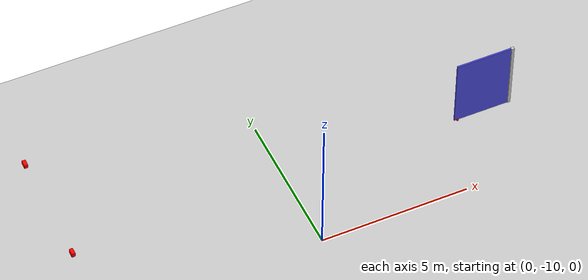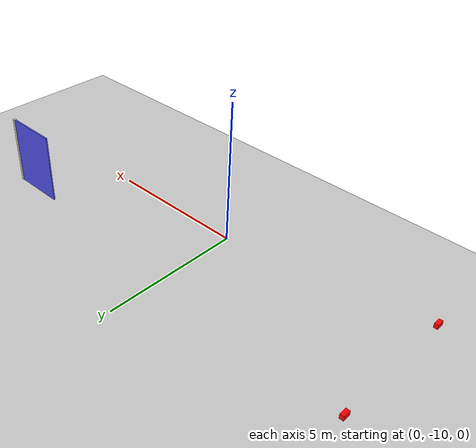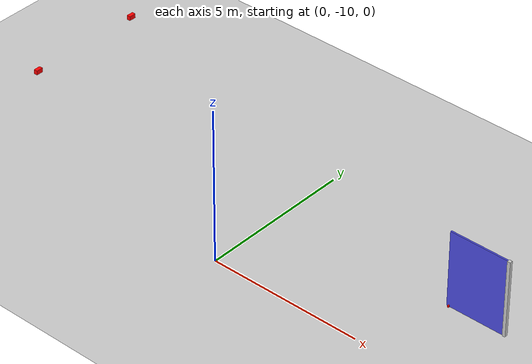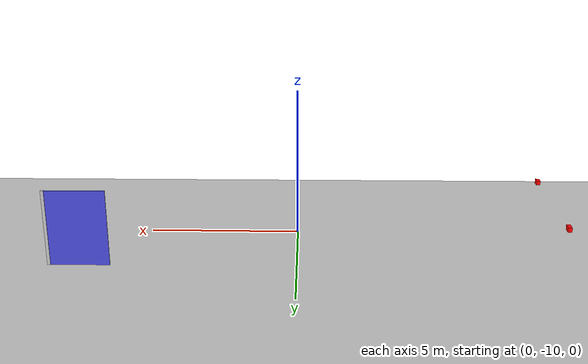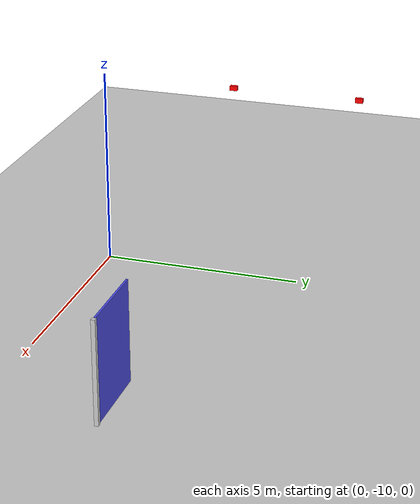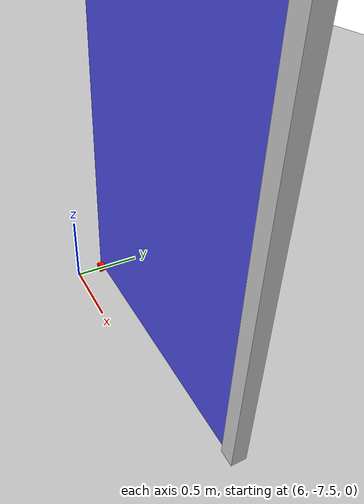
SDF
<sdf version="1.7">
 <world name="default">
  <model name="ground_plane">
   <static>1</static>
   <link name="link">
    <collision name="collision">
     <geometry><plane><normal>0 0 1</normal><size>100 100</size></plane></geometry>
     <surface><friction><ode><mu>100</mu><mu2>50</mu2></ode></friction></surface>
    </collision>
    <visual name="visual">
     <cast_shadows>0</cast_shadows>
     <geometry><plane><normal>0 0 1</normal><size>100 100</size></plane></geometry>
     <material>
      <script><uri>file://media/materials/scripts/gazebo.material</uri><name>Gazebo/Grey</name></script>
     </material>
    </visual>
   </link>
  </model>
  <model name="door_1">
   <link name="door_frame">
    <pose>0.705849 0 1.25 0 -0 0</pose>
    <kinematic>1</kinematic>
    <inertial>
     <inertia><ixx>1</ixx><ixy>0</ixy><ixz>0</ixz><iyy>1</iyy><iyz>0</iyz><izz>1</izz></inertia>
     <mass>1</mass>
    </inertial>
    <visual name="frame_visual">
     <geometry><box><size>0.1 0.1 2.5</size></box></geometry>
     <material>
      <ambient>0.7 0.7 0.7 1</ambient>
      <diffuse>0.8 0.8 0.8 1</diffuse>
      <shader type="pixel"><normal_map>__default__</normal_map></shader>
      <script><name>ModelPreview_2::door_frame::frame_visual_MATERIAL_</name><uri>__default__</uri></script>
      <specular>0 0 0 1</specular>
      <emissive>0 0 0 1</emissive>
     </material>
    </visual>
    <collision name="frame_collision">
     <geometry><box><size>0.1 0.1 2.5</size></box></geometry>
     <surface>
      <friction>
       <ode><mu>1</mu><mu2>1</mu2><fdir1>0 0 0</fdir1><slip1>0</slip1><slip2>0</slip2></ode>
       <torsional>
        <coefficient>1</coefficient>
        <patch_radius>0</patch_radius>
        <surface_radius>0</surface_radius>
        <use_patch_radius>1</use_patch_radius>
        <ode><slip>0</slip></ode>
       </torsional>
      </friction>
      <bounce><restitution_coefficient>0</restitution_coefficient><threshold>1e+06</threshold></bounce>
      <contact>
       <collide_without_contact>0</collide_without_contact>
       <collide_without_contact_bitmask>1</collide_without_contact_bitmask>
       <collide_bitmask>1</collide_bitmask>
       <ode>
        <soft_cfm>0</soft_cfm>
        <soft_erp>0.2</soft_erp>
        <kp>1e+13</kp>
        <kd>1</kd>
        <max_vel>0.01</max_vel>
        <min_depth>0</min_depth>
       </ode>
       <bullet>
        <split_impulse>1</split_impulse>
        <split_impulse_penetration_threshold>-0.01</split_impulse_penetration_threshold>
        <soft_cfm>0</soft_cfm>
        <soft_erp>0.2</soft_erp>
        <kp>1e+13</kp>
        <kd>1</kd>
       </bullet>
      </contact>
     </surface>
    </collision>
   </link>
   <link name="door">
    <kinematic>1</kinematic>
    <pose>-0.288809 0 1.25 0 -0 0</pose>
    <inertial>
     <inertia><ixx>1.96777</ixx><ixy>0</ixy><ixz>0</ixz><iyy>3.08912</iyy><iyz>0</iyz><izz>1.12292</izz></inertia>
     <mass>3.77661</mass>
    </inertial>
    <visual name="door_visual">
     <geometry><box><size>1.88826 0.05 2.5</size></box></geometry>
     <material>
      <ambient>0.2 0.2 0.8 1</ambient>
      <diffuse>0.3 0.3 0.9 1</diffuse>
      <shader type="pixel"/>
      <script><name>ModelPreview_2::door::door_visual_MATERIAL_</name><uri>__default__</uri></script>
     </material>
    </visual>
    <collision name="door_collision">
     <geometry><box><size>1.88826 0.05 2.5</size></box></geometry>
     <surface>
      <friction>
       <ode><mu>1</mu><mu2>1</mu2><fdir1>0 0 0</fdir1><slip1>0</slip1><slip2>0</slip2></ode>
       <torsional>
        <coefficient>1</coefficient>
        <patch_radius>0</patch_radius>
        <surface_radius>0</surface_radius>
        <use_patch_radius>1</use_patch_radius>
        <ode><slip>0</slip></ode>
       </torsional>
      </friction>
      <bounce><restitution_coefficient>0</restitution_coefficient><threshold>1e+06</threshold></bounce>
      <contact>
       <collide_without_contact>0</collide_without_contact>
       <collide_without_contact_bitmask>1</collide_without_contact_bitmask>
       <collide_bitmask>1</collide_bitmask>
       <ode>
        <soft_cfm>0</soft_cfm>
        <soft_erp>0.2</soft_erp>
        <kp>1e+13</kp>
        <kd>1</kd>
        <max_vel>0.01</max_vel>
        <min_depth>0</min_depth>
       </ode>
       <bullet>
        <split_impulse>1</split_impulse>
        <split_impulse_penetration_threshold>-0.01</split_impulse_penetration_threshold>
        <soft_cfm>0</soft_cfm>
        <soft_erp>0.2</soft_erp>
        <kp>1e+13</kp>
        <kd>1</kd>
       </bullet>
      </contact>
     </surface>
    </collision>
   </link>
   <joint name="door_joint" type="prismatic">
    <parent>door_frame</parent>
    <child>door</child>
    <axis>
     <xyz>1 0 0</xyz>
     <limit><lower>0</lower><upper>2</upper><effort>-1</effort><velocity>-1</velocity></limit>
     <dynamics>
      <spring_reference>0</spring_reference>
      <spring_stiffness>0</spring_stiffness>
      <damping>0</damping>
      <friction>0</friction>
     </dynamics>
    </axis>
    <physics>
     <ode><limit><cfm>0</cfm><erp>0.2</erp></limit><suspension><cfm>0</cfm><erp>0.2</erp></suspension></ode>
    </physics>
   </joint>
   <static>0</static>
   <plugin name="door_control_plugin" filename="libdoor_control_plugin.so">
    <door_joint>door_joint</door_joint>
    <speed>1.0</speed>
    <open_target>1.0</open_target>
    <close_target>0.0</close_target>
   </plugin>
   <pose>7.159 -7.25541 0 0 -0 0</pose>
  </model>
  <model name="Lidar_1">
   <link name="link_1">
    <inertial>
     <mass>0.00014111</mass>
     <inertia><ixx>7e-08</ixx><ixy>0</ixy><ixz>0</ixz><iyy>7e-08</iyy><iyz>0</iyz><izz>6e-08</izz></inertia>
    </inertial>
    <visual name="visual">
     <geometry><box><size>0.048286 0.048861 0.059852</size></box></geometry>
     <material>
      <lighting>1</lighting>
      <script><uri>file://media/materials/scripts/gazebo.material</uri><name>Gazebo/Grey</name></script>
      <shader type="pixel"><normal_map>__default__</normal_map></shader>
      <ambient>1 0 0 1</ambient>
      <diffuse>0.7 0.7 0.7 1</diffuse>
      <specular>0.01 0.01 0.01 1</specular>
      <emissive>0 0 0 1</emissive>
     </material>
    </visual>
    <collision name="collision">
     <geometry><box><size>0.048286 0.048861 0.059852</size></box></geometry>
     <surface>
      <friction>
       <ode><mu>1</mu><mu2>1</mu2><fdir1>0 0 0</fdir1><slip1>0</slip1><slip2>0</slip2></ode>
       <torsional>
        <coefficient>1</coefficient>
        <patch_radius>0</patch_radius>
        <surface_radius>0</surface_radius>
        <use_patch_radius>1</use_patch_radius>
        <ode><slip>0</slip></ode>
       </torsional>
      </friction>
      <bounce><restitution_coefficient>0</restitution_coefficient><threshold>1e+06</threshold></bounce>
      <contact>
       <collide_without_contact>0</collide_without_contact>
       <collide_without_contact_bitmask>1</collide_without_contact_bitmask>
       <collide_bitmask>1</collide_bitmask>
       <ode>
        <soft_cfm>0</soft_cfm>
        <soft_erp>0.2</soft_erp>
        <kp>1e+13</kp>
        <kd>1</kd>
        <max_vel>0.01</max_vel>
        <min_depth>0</min_depth>
       </ode>
       <bullet>
        <split_impulse>1</split_impulse>
        <split_impulse_penetration_threshold>-0.01</split_impulse_penetration_threshold>
        <soft_cfm>0</soft_cfm>
        <soft_erp>0.2</soft_erp>
        <kp>1e+13</kp>
        <kd>1</kd>
       </bullet>
      </contact>
     </surface>
    </collision>
   </link>
   <static>0</static>
   <pose>6.02119 -7.31108 0.029927 0 2.2e-05 0.176162</pose>
  </model>
  <model name="Camera_2">
   <link name="link_1">
    <inertial>
     <mass>0.00014152</mass>
     <inertia><ixx>8.3e-07</ixx><ixy>0</ixy><ixz>0</ixz><iyy>4e-07</iyy><iyz>0</iyz><izz>7.7e-07</izz></inertia>
    </inertial>
    <gravity>0</gravity>
    <visual name="visual">
     <geometry><box><size>0.119276 0.225925 0.14044</size></box></geometry>
     <material>
      <lighting>1</lighting>
      <script><uri>file://media/materials/scripts/gazebo.material</uri><name>Gazebo/Grey</name></script>
      <shader type="pixel"><normal_map>__default__</normal_map></shader>
      <ambient>1 0 0 1</ambient>
      <diffuse>0.7 0.7 0.7 1</diffuse>
      <specular>0.01 0.01 0.01 1</specular>
      <emissive>0 0 0 1</emissive>
     </material>
    </visual>
    <collision name="collision">
     <geometry><box><size>0.119276 0.225925 0.14044</size></box></geometry>
     <surface>
      <friction>
       <ode><mu>1</mu><mu2>1</mu2><fdir1>0 0 0</fdir1><slip1>0</slip1><slip2>0</slip2></ode>
       <torsional>
        <coefficient>1</coefficient>
        <patch_radius>0</patch_radius>
        <surface_radius>0</surface_radius>
        <use_patch_radius>1</use_patch_radius>
        <ode><slip>0</slip></ode>
       </torsional>
      </friction>
      <bounce><restitution_coefficient>0</restitution_coefficient><threshold>1e+06</threshold></bounce>
      <contact>
       <collide_without_contact>0</collide_without_contact>
       <collide_without_contact_bitmask>1</collide_without_contact_bitmask>
       <collide_bitmask>1</collide_bitmask>
       <ode>
        <soft_cfm>0</soft_cfm>
        <soft_erp>0.2</soft_erp>
        <kp>1e+13</kp>
        <kd>1</kd>
        <max_vel>0.01</max_vel>
        <min_depth>0</min_depth>
       </ode>
       <bullet>
        <split_impulse>1</split_impulse>
        <split_impulse_penetration_threshold>-0.01</split_impulse_penetration_threshold>
        <soft_cfm>0</soft_cfm>
        <soft_erp>0.2</soft_erp>
        <kp>1e+13</kp>
        <kd>1</kd>
       </bullet>
      </contact>
     </surface>
    </collision>
    <sensor name="camera_sensor2" type="camera">
     <update_rate>30</update_rate>
     <camera>
      <horizontal_fov>2.5</horizontal_fov>
      <image><width>800</width><height>600</height><format>R8G8B8</format></image>
      <clip><near>0.1</near><far>100</far></clip>
      <distortion><k1>-0.3</k1><k2>0.1</k2><p1>0</p1><p2>0</p2></distortion>
     </camera>
     <plugin name="camera_plugin" filename="libcamera_plugin.so"/>
    </sensor>
   </link>
   <static>1</static>
   <pose>-7.78976 -5.14654 2.25 0 -0 0</pose>
  </model>
  <model name="Camera_5">
   <link name="link_1">
    <inertial>
     <mass>0.00014152</mass>
     <inertia><ixx>8.3e-07</ixx><ixy>0</ixy><ixz>0</ixz><iyy>4e-07</iyy><iyz>0</iyz><izz>7.7e-07</izz></inertia>
    </inertial>
    <gravity>0</gravity>
    <visual name="visual">
     <geometry><box><size>0.119276 0.225925 0.14044</size></box></geometry>
     <material>
      <lighting>1</lighting>
      <script><uri>file://media/materials/scripts/gazebo.material</uri><name>Gazebo/Grey</name></script>
      <shader type="pixel"><normal_map>__default__</normal_map></shader>
      <ambient>1 0 0 1</ambient>
      <diffuse>0.7 0.7 0.7 1</diffuse>
      <specular>0.01 0.01 0.01 1</specular>
      <emissive>0 0 0 1</emissive>
     </material>
    </visual>
    <collision name="collision">
     <geometry><box><size>0.119276 0.225925 0.14044</size></box></geometry>
     <surface>
      <friction>
       <ode><mu>1</mu><mu2>1</mu2><fdir1>0 0 0</fdir1><slip1>0</slip1><slip2>0</slip2></ode>
       <torsional>
        <coefficient>1</coefficient>
        <patch_radius>0</patch_radius>
        <surface_radius>0</surface_radius>
        <use_patch_radius>1</use_patch_radius>
        <ode><slip>0</slip></ode>
       </torsional>
      </friction>
      <bounce><restitution_coefficient>0</restitution_coefficient><threshold>1e+06</threshold></bounce>
      <contact>
       <collide_without_contact>0</collide_without_contact>
       <collide_without_contact_bitmask>1</collide_without_contact_bitmask>
       <collide_bitmask>1</collide_bitmask>
       <ode>
        <soft_cfm>0</soft_cfm>
        <soft_erp>0.2</soft_erp>
        <kp>1e+13</kp>
        <kd>1</kd>
        <max_vel>0.01</max_vel>
        <min_depth>0</min_depth>
       </ode>
       <bullet>
        <split_impulse>1</split_impulse>
        <split_impulse_penetration_threshold>-0.01</split_impulse_penetration_threshold>
        <soft_cfm>0</soft_cfm>
        <soft_erp>0.2</soft_erp>
        <kp>1e+13</kp>
        <kd>1</kd>
       </bullet>
      </contact>
     </surface>
    </collision>
    <sensor name="camera_sensor5" type="camera">
     <update_rate>30</update_rate>
     <camera>
      <horizontal_fov>2.5</horizontal_fov>
      <image><width>800</width><height>600</height><format>R8G8B8</format></image>
      <clip><near>0.1</near><far>100</far></clip>
      <distortion><k1>-0.3</k1><k2>0.1</k2><p1>0</p1><p2>0</p2></distortion>
     </camera>
     <plugin name="camera_plugin" filename="libcamera_plugin.so"/>
    </sensor>
   </link>
   <static>1</static>
   <pose>-7.79561 -8.97716 2.25 0 -0 0</pose>
  </model>
 </world>
</sdf>
